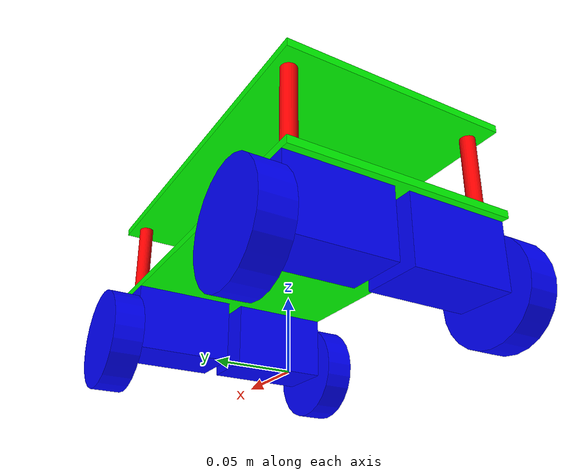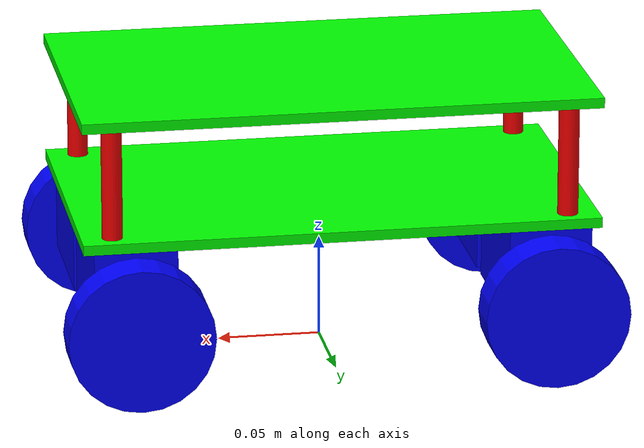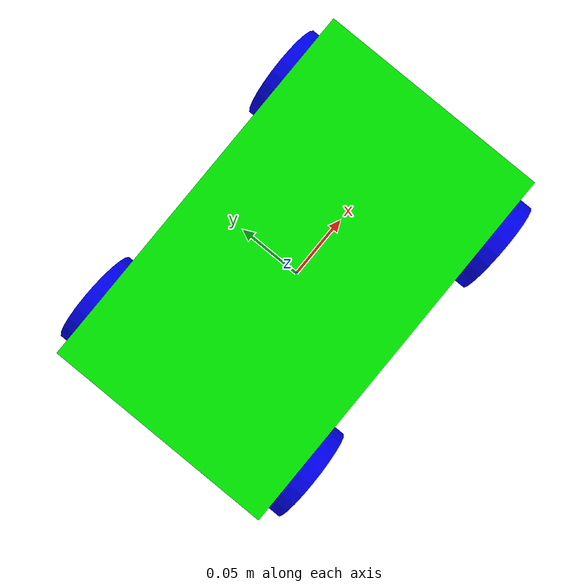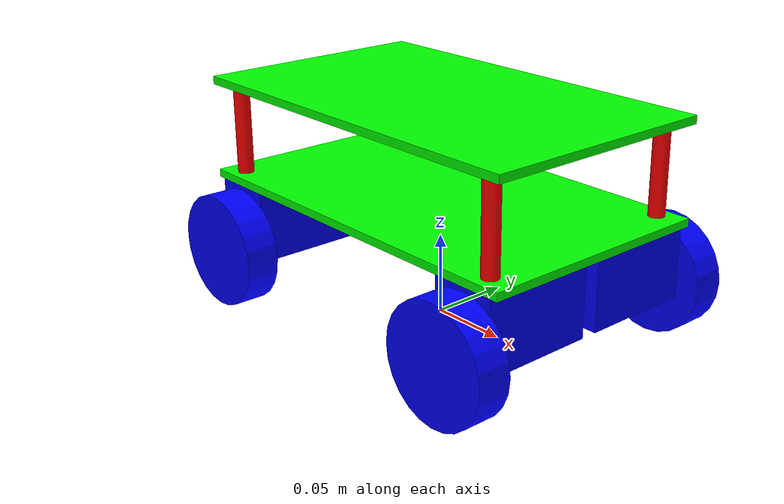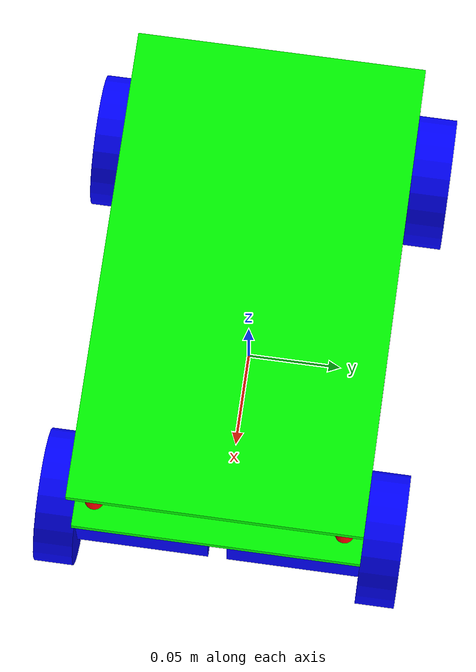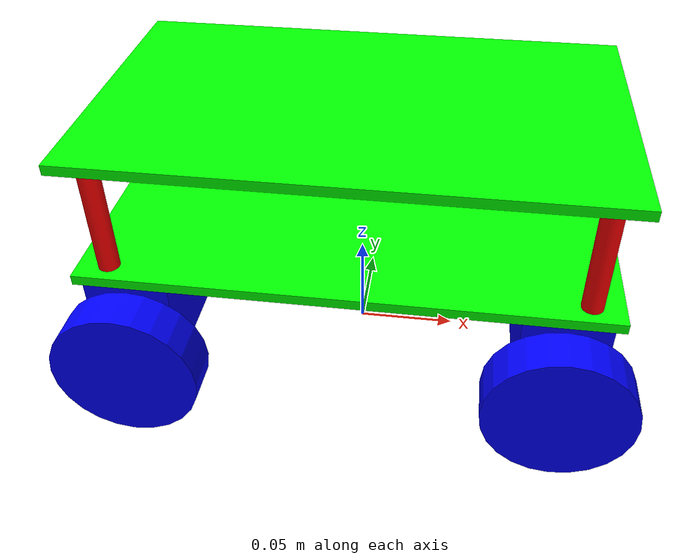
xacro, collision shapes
<?xml version="1.0" ?>

<robot name="robot" xmlns:xacro="http://ros.org/wiki/xacro">
  <xacro:include filename="$(find rrt_exploration_tutorials)/launch/includes/urdf/common_properties.urdf.xacro"/>
  <xacro:include filename="$(find rrt_exploration_tutorials)/launch/includes/urdf/robot3.gazebo.xacro"/>

    <link name="base_footprint"/>

    <joint name="base_joint" type="fixed">
      <origin xyz="0 0 0.075" rpy="0 0 0" />
      <parent link="base_footprint"/>
      <child link="base_link" />
    </joint>

    <link name="base_link">
      <visual>
        <geometry>
	  <box size="0.25 0.15 0.005" />
        </geometry>
        <material name="green">
          <color rgba="0.0 1 0.0 1" />
        </material>
      </visual>
      <collision>
        <geometry>
          <box size="0.25 0.15 0.005" />
        </geometry>
      </collision>
      <inertial>
        <mass value="0.5" />
        <inertia ixx="0.015" ixy="0" ixz="0" iyy="0.0375" iyz="0.0" izz="0.0275" />
      </inertial>
    </link>

    <!-- SECOND_base -->

    <joint name="base_second_joint" type="fixed">
      <origin xyz="0 0 0.06" rpy="0 0 0" />
      <parent link="base_link"/>
      <child link="base_second_link"/>
    </joint>
    <link name="base_second_link">
      <visual>
        <geometry>
	  <box size="0.25 0.15 0.005" />

        </geometry>
        <material name="green">
          <color rgba="0.0 1 0.0 1" />
        </material>
      </visual>
      <collision>
        <geometry>
          <box size="0.25 0.15 0.005" />
        </geometry>
      </collision>
      <inertial>
        <mass value="0.5" />
        <inertia ixx="0.015" ixy="0" ixz="0" iyy="0.0375" iyz="0.0" izz="0.0275" />
      </inertial>
    </link>

    <!-- wheels -->

    <joint name="front_left_wheel_joint" type="continuous">
      <parent link="front_left_motor_link"/>
      <child link="front_left_wheel_link"/>
      <origin xyz="0.0 0.045 -0.015" rpy="1.57 0 0"/>
      <axis xyz="0 0 1"/>
    </joint>
    <link name="front_left_wheel_link">
      <visual>
        <geometry>
          <mesh filename="package://rrt_exploration_tutorials/launch/includes/meshes/wheel.dae"/>
        </geometry>
        <material name="blue">
          <color rgba="0.0 0.0 1 1" />
        </material>
      </visual>
      <collision>
        <geometry>
          <cylinder length="0.0206" radius="0.0352"/>
        </geometry>
      </collision>
      <inertial>
        <mass value="0.5" />
        <inertia ixx="0.05" ixy="0" ixz="0" iyy="0.05" iyz="0.0" izz="0.05" />
      </inertial>
    </link>

    <joint name="front_right_wheel_joint" type="continuous">
      <parent link="front_right_motor_link"/>
      <child link="front_right_wheel_link"/>
      <origin xyz="0.0 -0.045 -0.015" rpy="1.57 0 0"/>
      <axis xyz="0 0 1"/>
    </joint>
    <link name="front_right_wheel_link">
      <visual>
        <geometry>
          <mesh filename="package://rrt_exploration_tutorials/launch/includes/meshes/wheel.dae"/>
        </geometry>
        <material name="blue">
          <color rgba="0.0 0.0 1 1" />
        </material>
      </visual>
      <collision>
        <geometry>
          <cylinder length="0.0206" radius="0.0352"/>
        </geometry>
      </collision>
      <inertial>
        <mass value="0.5" />
        <inertia ixx="0.05" ixy="0" ixz="0" iyy="0.05" iyz="0.0" izz="0.05" />
      </inertial>
    </link>

    <joint name="back_left_wheel_joint" type="continuous">
      <parent link="back_left_motor_link"/>
      <child link="back_left_wheel_link"/>
      <origin xyz="0.0 0.045 -0.015" rpy="1.57 0 0"/>
      <axis xyz="0 0 1"/>
    </joint>
    <link name="back_left_wheel_link">
      <visual>
        <geometry>
          <mesh filename="package://rrt_exploration_tutorials/launch/includes/meshes/wheel.dae"/>
        </geometry>
        <material name="blue">
          <color rgba="0.0 0.0 1 1" />
        </material>
      </visual>
      <collision>
        <geometry>
          <cylinder length="0.0206" radius="0.0352"/>
        </geometry>
      </collision>
      <inertial>
        <mass value="0.5" />
        <inertia ixx="0.05" ixy="0" ixz="0" iyy="0.05" iyz="0.0" izz="0.05" />
      </inertial>
    </link>

    <joint name="back_right_wheel_joint" type="continuous">
      <parent link="back_right_motor_link"/>
      <child link="back_right_wheel_link"/>
      <origin xyz="0.0 -0.045 -0.015" rpy="1.57 0 0"/>
      <axis xyz="0 0 1"/>
    </joint>
    <link name="back_right_wheel_link">
      <visual>
        <geometry>
          <mesh filename="package://rrt_exploration_tutorials/launch/includes/meshes/wheel.dae"/>
        </geometry>
        <material name="blue">
          <color rgba="0.0 0.0 1 1" />
        </material>
      </visual>
      <collision>
        <geometry>
          <cylinder length="0.0206" radius="0.0352"/>
        </geometry>
      </collision>
      <inertial>
        <mass value="0.5" />
        <inertia ixx="0.05" ixy="0" ixz="0" iyy="0.05" iyz="0.0" izz="0.05" />
      </inertial>
    </link>

    <!-- motor -->
    <joint name="front_left_motor_joint" type="fixed">
      <parent link="base_link"/>
      <child link="front_left_motor_link"/>
      <origin xyz="0.10 0.040 -0.025" rpy="0 0 0"/>
    </joint>
    <link name="front_left_motor_link">
      <visual>
        <geometry>
          <box size="0.04 0.07 0.045" />
        </geometry>
        <material name="blue">
          <color rgba="0.0 0.0 1 1" />
        </material>
      </visual>
      <collision>
        <geometry>
          <box size="0.04 0.07 0.045" />
        </geometry>
      </collision>
      <inertial>
        <mass value="0.2" />
        <inertia ixx="0.015" ixy="0" ixz="0" iyy="0.0375" iyz="0.0" izz="0.0275" />
      </inertial>
    </link>

    <joint name="front_right_motor_joint" type="fixed">
      <parent link="base_link"/>
      <child link="front_right_motor_link"/>
      <origin xyz="0.10 -0.040 -0.025" rpy="0 0 0"/>
    </joint>
    <link name="front_right_motor_link">
      <visual>
        <geometry>
          <box size="0.04 0.07 0.045" />
        </geometry>
        <material name="blue">
          <color rgba="0.0 0.0 1 1" />
        </material>
      </visual>
      <collision>
        <geometry>
          <box size="0.04 0.07 0.045" />
        </geometry>
      </collision>
      <inertial>
        <mass value="0.2" />
        <inertia ixx="0.015" ixy="0" ixz="0" iyy="0.0375" iyz="0.0" izz="0.0275" />
      </inertial>
    </link>

    <joint name="back_left_motor_joint" type="fixed">
      <parent link="base_link"/>
      <child link="back_left_motor_link"/>
      <origin xyz="-0.10 0.040 -0.025" rpy="0 0 0"/>
    </joint>
    <link name="back_left_motor_link">
      <visual>
        <geometry>
          <box size="0.04 0.07 0.045" />
        </geometry>
        <material name="blue">
          <color rgba="0.0 0.0 1 1" />
        </material>
      </visual>
      <collision>
        <geometry>
          <box size="0.04 0.07 0.045" />
        </geometry>
      </collision>
      <inertial>
        <mass value="0.2" />
        <inertia ixx="0.015" ixy="0" ixz="0" iyy="0.0375" iyz="0.0" izz="0.0275" />
      </inertial>
    </link>

    <joint name="back_right_motor_joint" type="fixed">
      <parent link="base_link"/>
      <child link="back_right_motor_link"/>
      <origin xyz="-0.10 -0.040 -0.025" rpy="0 0 0"/>
    </joint>
    <link name="back_right_motor_link">
      <visual>
        <geometry>
          <box size="0.04 0.07 0.045" />
        </geometry>
        <material name="blue">
          <color rgba="0.0 0.0 1 1" />
        </material>
      </visual>
      <collision>
        <geometry>
          <box size="0.04 0.07 0.045" />
        </geometry>
      </collision>
      <inertial>
        <mass value="0.2" />
        <inertia ixx="0.015" ixy="0" ixz="0" iyy="0.0375" iyz="0.0" izz="0.0275" />
      </inertial>
    </link>

    <!-- Pillar -->

    <joint name="front_left_pillar_joint" type="fixed">
      <parent link="base_link"/>
      <child link="front_left_pillar_link"/>
      <origin xyz="0.11 0.065 0.03" rpy="0 0 0"/>
    </joint>
    <link name="front_left_pillar_link">
      <visual>
        <geometry>
         <cylinder radius="0.005" length="0.06" />
        </geometry>
        <material name="red">
          <color rgba="1 0.0 0.0 1" />
        </material>
      </visual>
      <collision>
        <geometry>
          <cylinder radius="0.005" length="0.06" />
        </geometry>
      </collision>
      <inertial>
        <mass value="0.1" />
        <inertia ixx="0.015" ixy="0" ixz="0" iyy="0.0375" iyz="0.0" izz="0.0275" />
      </inertial>
    </link>

    <joint name="front_right_pillar_joint" type="fixed">
      <parent link="base_link"/>
      <child link="front_right_pillar_link"/>
      <origin xyz="0.11 -0.065 0.03" rpy="0 0 0"/>
    </joint>
    <link name="front_right_pillar_link">
      <visual>
        <geometry>
         <cylinder radius="0.005" length="0.06" />
        </geometry>
        <material name="red">
          <color rgba="1 0.0 0.0 1" />
        </material>
      </visual>
      <collision>
        <geometry>
          <cylinder radius="0.005" length="0.06" />
        </geometry>
      </collision>
      <inertial>
        <mass value="0.1" />
        <inertia ixx="0.015" ixy="0" ixz="0" iyy="0.0375" iyz="0.0" izz="0.0275" />
      </inertial>
    </link>

    <joint name="back_left_pillar_joint" type="fixed">
      <parent link="base_link"/>
      <child link="back_left_pillar_link"/>
      <origin xyz="-0.11 0.065 0.03" rpy="0 0 0"/>
    </joint>
    <link name="back_left_pillar_link">
      <visual>
        <geometry>
         <cylinder radius="0.005" length="0.06" />
        </geometry>
        <material name="red">
          <color rgba="1 0.0 0.0 1" />
        </material>
      </visual>
      <collision>
        <geometry>
          <cylinder radius="0.005" length="0.06" />
        </geometry>
      </collision>
      <inertial>
        <mass value="0.1" />
        <inertia ixx="0.015" ixy="0" ixz="0" iyy="0.0375" iyz="0.0" izz="0.0275" />
      </inertial>
    </link>

    <joint name="back_right_pillar_joint" type="fixed">
      <parent link="base_link"/>
      <child link="back_right_pillar_link"/>
      <origin xyz="-0.11 -0.065 0.03" rpy="0 0 0"/>
    </joint>
    <link name="back_right_pillar_link">
      <visual>
        <geometry>
         <cylinder radius="0.005" length="0.06" />
        </geometry>
        <material name="red">
          <color rgba="1 0.0 0.0 1" />
        </material>
      </visual>
      <collision>
        <geometry>
          <cylinder radius="0.005" length="0.06" />
        </geometry>
      </collision>
      <inertial>
        <mass value="0.1" />
        <inertia ixx="0.015" ixy="0" ixz="0" iyy="0.0375" iyz="0.0" izz="0.0275" />
      </inertial>
    </link>

    <!-- sensors -->

    <joint name="laser_joint" type="fixed">
    <parent link="base_second_link" />
    <child link="laser" />
    <origin xyz="0.04 0.0 0.035" rpy="0 0 0"/>
    <axis xyz="0 1 0"/>
</joint>

<link name="laser">
    <visual>
        <geometry>
            <mesh filename="package://rrt_exploration_tutorials/launch/includes/meshes/hokuyo.dae"/>
        </geometry>
    </visual>
    <inertial>
        <mass value="0.01" />
        <inertia ixx="0.015" ixy="0" ixz="0" iyy="0.0375" iyz="0.0" izz="0.0275" />
    </inertial>
</link>

</robot>
